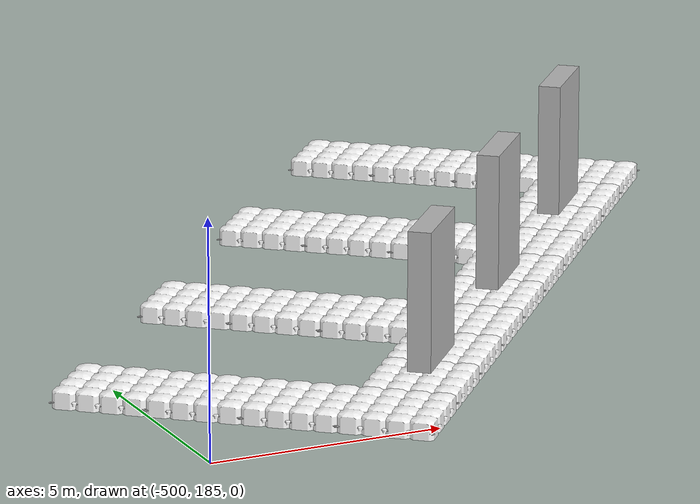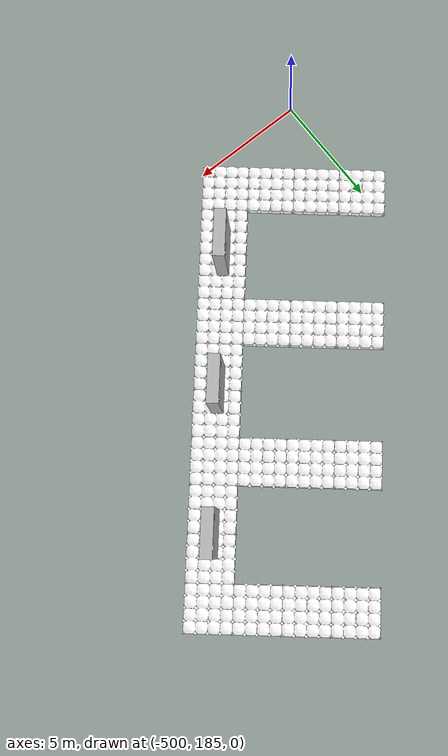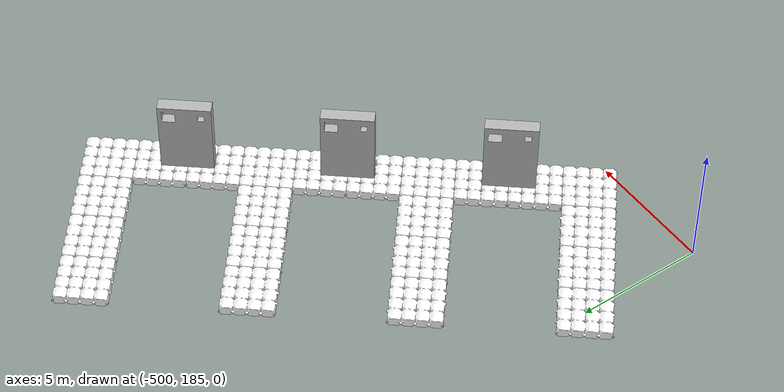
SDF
<sdf version="1.9">
 <world name="scan_dock_deliver4">
  <physics name="4ms" type="dart">
   <max_step_size>0.004</max_step_size>
   <real_time_factor>1.0</real_time_factor>
  </physics>
  <plugin filename="gz-sim-physics-system" name="gz::sim::systems::Physics"/>
  <plugin filename="gz-sim-user-commands-system" name="gz::sim::systems::UserCommands"/>
  <plugin filename="gz-sim-sensors-system" name="gz::sim::systems::Sensors">
   <render_engine>ogre2</render_engine>
   <disable_on_drained_battery>true</disable_on_drained_battery>
  </plugin>
  <plugin filename="gz-sim-imu-system" name="gz::sim::systems::Imu"/>
  <plugin filename="gz-sim-magnetometer-system" name="gz::sim::systems::Magnetometer"/>
  <plugin filename="gz-sim-forcetorque-system" name="gz::sim::systems::ForceTorque"/>
  <plugin filename="gz-sim-particle-emitter2-system" name="gz::sim::systems::ParticleEmitter2"/>
  <plugin filename="gz-sim-scene-broadcaster-system" name="gz::sim::systems::SceneBroadcaster"/>
  <plugin filename="gz-sim-contact-system" name="gz::sim::systems::Contact"/>
  <plugin filename="gz-sim-navsat-system" name="gz::sim::systems::NavSat"/>
  <scene><grid>false</grid><ambient>0.8 0.8 0.8</ambient><background>0.8 0.8 0.8</background></scene>
  <spherical_coordinates>
   <surface_model>EARTH_WGS84</surface_model>
   <world_frame_orientation>ENU</world_frame_orientation>
   <latitude_deg>-33.724223</latitude_deg>
   <longitude_deg>150.679736</longitude_deg>
   <elevation>0.0</elevation>
   <heading_deg>0.0</heading_deg>
  </spherical_coordinates>
  <light type="directional" name="sun">
   <pose>0 0 10 0 0 0</pose>
   <diffuse>0.8 0.8 0.8 1</diffuse>
   <specular>0.2 0.2 0.2 1</specular>
   <attenuation>
    <range>1000</range>
    <constant>0.9</constant>
    <linear>0.01</linear>
    <quadratic>0.001</quadratic>
   </attenuation>
   <direction>-0.5 0.1 -0.9</direction>
  </light>
  <include><name>platform</name><uri>platform</uri></include>
  <plugin name="gz::sim" filename="dummy">
   <performer name="perf_blue_projectile">
    <ref>blue_projectile</ref>
    <geometry><box><size>0.057 0.057 0.057</size></box></geometry>
   </performer>
  </plugin>
  <plugin filename="libUSVWind.so" name="vrx::USVWind">
   <wind_obj>
    <name>wamv</name>
    <link_name>wamv/base_link</link_name>
    <coeff_vector>.5 .5 .33</coeff_vector>
   </wind_obj>
   <wind_direction>96</wind_direction>
   <wind_mean_velocity>3.0</wind_mean_velocity>
   <var_wind_gain_constants>2.0</var_wind_gain_constants>
   <var_wind_time_constants>2</var_wind_time_constants>
   <random_seed>11</random_seed>
   <update_rate>10</update_rate>
   <topic_wind_speed>/vrx/debug/wind/speed</topic_wind_speed>
   <topic_wind_direction>/vrx/debug/wind/direction</topic_wind_direction>
  </plugin>
  <plugin filename="libPublisherPlugin.so" name="vrx::PublisherPlugin">
   <message type="gz.msgs.Param" topic="/vrx/wavefield/parameters" every="2.0">params {
          key: "direction"
          value {
            type: DOUBLE
            double_value: 0.7853982
          }
        }
        params {
          key: "gain"
          value {
            type: DOUBLE
            double_value: 0.6
          }
        }
        params {
          key: "period"
          value {
            type: DOUBLE
            double_value: 6
          }
        }
        params {
          key: "steepness"
          value {
            type: DOUBLE
            double_value: 0
          }
        }</message>
  </plugin>
  <include><uri>dock_2022</uri><pose>-500 190 0 0 0 -0.7</pose></include>
  <plugin filename="libScanDockScoringPlugin.so" name="vrx::ScanDockScoringPlugin">
   <vehicle>wamv</vehicle>
   <task_name>scan_dock_deliver</task_name>
   <task_info_topic>/vrx/task/info</task_info_topic>
   <initial_state_duration>10</initial_state_duration>
   <ready_state_duration>10</ready_state_duration>
   <running_state_duration>300</running_state_duration>
   <release_topic>/vrx/release</release_topic>
   <color_sequence_topic>/vrx/scan_dock_deliver/color_sequence</color_sequence_topic>
   <color_1>blue</color_1>
   <color_2>green</color_2>
   <color_3>yellow</color_3>
   <dock_bonus_points>15</dock_bonus_points>
   <correct_dock_bonus_points>5</correct_dock_bonus_points>
   <bays>
    <bay>
     <name>bay1</name>
     <internal_activation_topic>/vrx/dock_2022/bay_1/contain</internal_activation_topic>
     <external_activation_topic>/vrx/dock_2022/bay_1_external/contain</external_activation_topic>
     <symbol_topic>/vrx/dock_2022_placard1/symbol</symbol_topic>
     <min_dock_time>10.0</min_dock_time>
     <correct_dock>False</correct_dock>
     <symbol>yellow_cross</symbol>
    </bay>
    <bay>
     <name>bay2</name>
     <internal_activation_topic>/vrx/dock_2022/bay_2/contain</internal_activation_topic>
     <external_activation_topic>/vrx/dock_2022/bay_2_external/contain</external_activation_topic>
     <symbol_topic>/vrx/dock_2022_placard2/symbol</symbol_topic>
     <min_dock_time>10.0</min_dock_time>
     <correct_dock>False</correct_dock>
     <symbol>green_triangle</symbol>
    </bay>
    <bay>
     <name>bay3</name>
     <internal_activation_topic>/vrx/dock_2022/bay_3/contain</internal_activation_topic>
     <external_activation_topic>/vrx/dock_2022/bay_3_external/contain</external_activation_topic>
     <symbol_topic>/vrx/dock_2022_placard3/symbol</symbol_topic>
     <min_dock_time>10.0</min_dock_time>
     <correct_dock>True</correct_dock>
     <symbol>blue_rectangle</symbol>
    </bay>
   </bays>
   <targets>
    <target><topic>/vrx/dock_2022_placard1_big_hole/contain</topic><bonus_points>5</bonus_points></target>
    <target><topic>/vrx/dock_2022_placard1_small_hole/contain</topic><bonus_points>10</bonus_points></target>
    <target><topic>/vrx/dock_2022_placard2_big_hole/contain</topic><bonus_points>5</bonus_points></target>
    <target><topic>/vrx/dock_2022_placard2_small_hole/contain</topic><bonus_points>10</bonus_points></target>
    <target><topic>/vrx/dock_2022_placard3_big_hole/contain</topic><bonus_points>5</bonus_points></target>
    <target><topic>/vrx/dock_2022_placard3_small_hole/contain</topic><bonus_points>10</bonus_points></target>
   </targets>
  </plugin>
 </world>
</sdf>

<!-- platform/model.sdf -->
<sdf version="1.6">
  <model name="platform">
    <static>false</static>
    <link name="dummy_upper"/>

    <joint name="world_joint" type="fixed">
      <parent>world</parent>
      <child>dummy_upper</child>
    </joint>
  </model>
</sdf>

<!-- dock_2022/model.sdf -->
<sdf version="1.6">

  <model name="robotx_dock_2022">
    <static>true</static>

    <!-- The 2022 dock base -->
    <include>
      <uri>dock_2022_base</uri>
    </include>

    <!-- Placard #1 -->
    <model name="dock_2022_placard1">
      <pose>5.75 3 1.5 0 0 1.5707963267948966</pose>
      <include>
        <static>true</static>
        <pose>0 -0.2 0.25 0 0 3.14159</pose>
        <uri>placard_2022</uri>
      </include>
      <link name="link_symbols">
        <static>true</static>
        <pose>0 0.07 0 0 0 0 </pose>
        <visual name="visual_circle">
          <pose>0 0 0 1.571 0 0</pose>
          <geometry>
            <cylinder>
              <radius>0.5</radius>
              <length>0.001</length>
            </cylinder>
          </geometry>
          <transparency>1</transparency>
          <plugin name="vrx::PlacardPlugin" filename="libPlacardPlugin.so">
            <visuals>
              <visual>robotx_dock_2022::dock_2022_placard1::link_symbols::visual_circle</visual>
              <visual>robotx_dock_2022::dock_2022_placard1::link_symbols::visual_h_cross</visual>
              <visual>robotx_dock_2022::dock_2022_placard1::link_symbols::visual_v_cross</visual>
	            <visual>robotx_dock_2022::dock_2022_placard1::link_symbols::visual_triangle</visual>
              <visual>robotx_dock_2022::dock_2022_placard1::link_symbols::visual_rectangle</visual>
            </visuals>
            <shuffle>true</shuffle>
            <robot_namespace>vrx/dock_2022_placard1</robot_namespace>
            <shuffle_topic>shuffle</shuffle_topic>
          </plugin>
        </visual>
        <visual name="visual_h_cross">
          <pose>0 0 0 1.571 0 0</pose>
          <geometry>
            <box>
              <size>0.99 0.33 0.001</size>
            </box>
          </geometry>
          <transparency>1</transparency>
        </visual>
        <visual name="visual_v_cross">
          <pose>0 0 0 1.571 0 0</pose>
          <geometry>
            <box>
              <size>0.33 0.99 0.001</size>
            </box>
          </geometry>
          <transparency>1</transparency>
	      </visual>
        <visual name="visual_triangle">
          <pose> -0.5 0 -0.5 1.571 0 0</pose>
          <geometry>
            <mesh><uri>model://symbol_triangle/mesh/triangle.dae</uri></mesh>
          </geometry>
          <transparency>1</transparency>
	      </visual>
        <visual name="visual_rectangle">
          <pose> 0 0 0 1.571 0 0</pose>
          <geometry>
            <box>
              <size>1 0.75 0.001</size>
            </box>
          </geometry>
          <transparency>1</transparency>
        </visual>

      </link>

      <joint name="placard_to_visual" type="fixed">
        <pose> 0 0 0 0 0 0 </pose>
        <parent>placard::link</parent>
        <child>link_symbols</child>
      </joint>

    </model>

    <!-- Placard #2 -->
    <model name="dock_2022_placard2">
      <pose>5.75 9 1.5 0 0 1.5707963267948966</pose>
      <include>
        <static>true</static>
        <pose>0 -0.2 0.25 0 0 3.14159</pose>
        <uri>placard_2022</uri>
      </include>
      <link name="link_symbols">
        <static>true</static>
        <pose>0 0.07 0 0 0 0 </pose>
        <visual name="visual_circle">
          <pose>0 0 0 1.571 0 0</pose>
          <geometry>
            <cylinder>
              <radius>0.5</radius>
              <length>0.001</length>
            </cylinder>
          </geometry>
          <transparency>1</transparency>
          <plugin name="vrx::PlacardPlugin" filename="libPlacardPlugin.so">
            <visuals>
              <visual>robotx_dock_2022::dock_2022_placard2::link_symbols::visual_circle</visual>
              <visual>robotx_dock_2022::dock_2022_placard2::link_symbols::visual_h_cross</visual>
              <visual>robotx_dock_2022::dock_2022_placard2::link_symbols::visual_v_cross</visual>
	            <visual>robotx_dock_2022::dock_2022_placard2::link_symbols::visual_triangle</visual>
              <visual>robotx_dock_2022::dock_2022_placard2::link_symbols::visual_rectangle</visual>
            </visuals>
            <shuffle>true</shuffle>
            <robot_namespace>vrx/dock_2022_placard2</robot_namespace>
            <shuffle_topic>shuffle</shuffle_topic>
          </plugin>
        </visual>
        <visual name="visual_h_cross">
          <pose>0 0 0 1.571 0 0</pose>
          <geometry>
            <box>
              <size>0.99 0.33 0.001</size>
            </box>
          </geometry>
          <transparency>1</transparency>
        </visual>
        <visual name="visual_v_cross">
          <pose>0 0 0 1.571 0 0</pose>
          <geometry>
            <box>
              <size>0.33 0.99 0.001</size>
            </box>
          </geometry>
          <transparency>1</transparency>
	      </visual>
        <visual name="visual_triangle">
          <pose> -0.5 0 -0.5 1.571 0 0</pose>
          <geometry>
            <mesh><uri>model://symbol_triangle/mesh/triangle.dae</uri></mesh>
          </geometry>
          <transparency>1</transparency>
	      </visual>
        <visual name="visual_rectangle">
          <pose> 0 0 0 1.571 0 0</pose>
          <geometry>
            <box>
              <size>1 0.75 0.001</size>
            </box>
          </geometry>
          <transparency>1</transparency>
        </visual>

      </link>

      <joint name="placard_to_visual" type="fixed">
        <pose> 0 0 0 0 0 0 </pose>
        <parent>placard::link</parent>
        <child>link_symbols</child>
      </joint>

    </model>

    <!-- Placard #3 -->
    <model name="dock_2022_placard3">
      <pose>5.75 15 1.5 0 0 1.5707963267948966</pose>
      <include>
        <static>true</static>
        <pose>0 -0.2 0.25 0 0 3.14159</pose>
        <uri>placard_2022</uri>
      </include>
      <link name="link_symbols">
        <static>true</static>
        <pose>0 0.07 0 0 0 0 </pose>
        <visual name="visual_circle">
          <pose>0 0 0 1.571 0 0</pose>
          <geometry>
            <cylinder>
              <radius>0.5</radius>
              <length>0.001</length>
            </cylinder>
          </geometry>
          <transparency>1</transparency>
          <plugin name="vrx::PlacardPlugin" filename="libPlacardPlugin.so">
            <visuals>
              <visual>robotx_dock_2022::dock_2022_placard3::link_symbols::visual_circle</visual>
              <visual>robotx_dock_2022::dock_2022_placard3::link_symbols::visual_h_cross</visual>
              <visual>robotx_dock_2022::dock_2022_placard3::link_symbols::visual_v_cross</visual>
	            <visual>robotx_dock_2022::dock_2022_placard3::link_symbols::visual_triangle</visual>
              <visual>robotx_dock_2022::dock_2022_placard3::link_symbols::visual_rectangle</visual>
            </visuals>
            <shuffle>true</shuffle>
            <robot_namespace>vrx/dock_2022_placard3</robot_namespace>
            <shuffle_topic>shuffle</shuffle_topic>
          </plugin>
        </visual>
        <visual name="visual_h_cross">
          <pose>0 0 0 1.571 0 0</pose>
          <geometry>
            <box>
              <size>0.99 0.33 0.001</size>
            </box>
          </geometry>
          <transparency>1</transparency>
        </visual>
        <visual name="visual_v_cross">
          <pose>0 0 0 1.571 0 0</pose>
          <geometry>
            <box>
              <size>0.33 0.99 0.001</size>
            </box>
          </geometry>
          <transparency>1</transparency>
	      </visual>
        <visual name="visual_triangle">
          <pose> -0.5 0 -0.5 1.571 0 0</pose>
          <geometry>
            <mesh><uri>model://symbol_triangle/mesh/triangle.dae</uri></mesh>
          </geometry>
          <transparency>1</transparency>
	      </visual>
        <visual name="visual_rectangle">
          <pose> 0 0 0 1.571 0 0</pose>
          <geometry>
            <box>
              <size>1 0.75 0.001</size>
            </box>
          </geometry>
          <transparency>1</transparency>
        </visual>

      </link>

      <joint name="placard_to_visual" type="fixed">
        <pose> 0 0 0 0 0 0 </pose>
        <parent>placard::link</parent>
        <child>link_symbols</child>
      </joint>

    </model>

    <!-- Uncomment to see the activation areas of the PerformerDectorPlugins
         Make sure that the size and location are consistent with plugin -->

      <!-- Uncomment to see the activation areas of the projectile targets -->

    <!-- Plugins to detect if vehicle is in the different dock regions -->
    <plugin
      filename="gz-sim-performer-detector-system"
      name="gz::sim::systems::PerformerDetector">
      <topic>/vrx/dock_2022/bay_1/contain</topic>
      <pose>1.5 3 0.25 0 0 1.5707963267948966</pose>
      <geometry>
        <box>
          <size>1.5 4 2</size>
        </box>
      </geometry>
    </plugin>

    <plugin
      filename="gz-sim-performer-detector-system"
      name="gz::sim::systems::PerformerDetector">
      <topic>/vrx/dock_2022/bay_2/contain</topic>
      <pose>1.5 9 0.25 0 0 1.5707963267948966</pose>
      <geometry>
        <box>
          <size>1.5 4 2</size>
        </box>
      </geometry>
    </plugin>

    <plugin
      filename="gz-sim-performer-detector-system"
      name="gz::sim::systems::PerformerDetector">
      <topic>/vrx/dock_2022/bay_3/contain</topic>
      <pose>1.5 15 0.25 0 0 1.5707963267948966</pose>
      <geometry>
        <box>
          <size>1.5 4 2</size>
        </box>
      </geometry>
    </plugin>

    <plugin
      filename="gz-sim-performer-detector-system"
      name="gz::sim::systems::PerformerDetector">
      <topic>/vrx/dock_2022/bay_1_external/contain</topic>
      <pose>-3.5 3 0.25 0 0 1.5707963267948966</pose>
      <geometry>
        <box>
          <size>5.5 1.5 2</size>
        </box>
      </geometry>
    </plugin>

    <plugin
      filename="gz-sim-performer-detector-system"
      name="gz::sim::systems::PerformerDetector">
      <topic>/vrx/dock_2022/bay_2_external/contain</topic>
      <pose>-3.5 9 0.25 0 0 1.5707963267948966</pose>
      <geometry>
        <box>
          <size>5.5 1.5 2</size>
        </box>
      </geometry>
    </plugin>

    <plugin
      filename="gz-sim-performer-detector-system"
      name="gz::sim::systems::PerformerDetector">
      <topic>/vrx/dock_2022/bay_3_external/contain</topic>
      <pose>-3.5 15 0.25 0 0 1.5707963267948966</pose>
      <geometry>
        <box>
          <size>5.5 1.5 2</size>
        </box>
      </geometry>
    </plugin>

    <!-- Plugins to detect if the projectile entered the hole -->
    <plugin
      filename="gz-sim-performer-detector-system"
      name="gz::sim::systems::PerformerDetector">
      <topic>/vrx/dock_2022_placard1_big_hole/contain</topic>
      <pose>5.95 3.59 2.83 0 0 1.5707963267948966</pose>
      <geometry>
        <box>
          <size>0.5 0.5 0.5</size>
        </box>
      </geometry>
    </plugin>

    <plugin
      filename="gz-sim-performer-detector-system"
      name="gz::sim::systems::PerformerDetector">
      <topic>vrx/dock_2022_placard1_small_hole/contain</topic>
      <pose>5.95 2.39 2.83 0 0 1.5707963267948966</pose>
      <geometry>
        <box>
          <size>0.25 0.5 0.25</size>
        </box>
      </geometry>
    </plugin>

    <plugin
      filename="gz-sim-performer-detector-system"
      name="gz::sim::systems::PerformerDetector">
      <topic>/vrx/dock_2022_placard2_big_hole/contain</topic>
      <pose>5.95 9.59 2.83 0 0 1.5707963267948966</pose>
      <geometry>
        <box>
          <size>0.5 0.5 0.5</size>
        </box>
      </geometry>
    </plugin>

    <plugin
      filename="gz-sim-performer-detector-system"
      name="gz::sim::systems::PerformerDetector">
      <topic>vrx/dock_2022_placard2_small_hole/contain</topic>
      <pose>5.95 8.39 2.83 0 0 1.5707963267948966</pose>
      <geometry>
        <box>
          <size>0.25 0.5 0.25</size>
        </box>
      </geometry>
    </plugin>

    <plugin
      filename="gz-sim-performer-detector-system"
      name="gz::sim::systems::PerformerDetector">
      <topic>/vrx/dock_2022_placard3_big_hole/contain</topic>
      <pose>5.95 15.59 2.83 0 0 1.5707963267948966</pose>
      <geometry>
        <box>
          <size>0.5 0.5 0.5</size>
        </box>
      </geometry>
    </plugin>

    <plugin
      filename="gz-sim-performer-detector-system"
      name="gz::sim::systems::PerformerDetector">
      <topic>vrx/dock_2022_placard3_small_hole/contain</topic>
      <pose>5.95 14.39 2.83 0 0 1.5707963267948966</pose>
      <geometry>
        <box>
          <size>0.25 0.5 0.25</size>
        </box>
      </geometry>
    </plugin>

  </model>
</sdf>

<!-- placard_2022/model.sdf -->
<sdf version="1.6">
  <model name="placard">
    <pose>0 0 1 0 0 0</pose>
    <!-- The white placard -->
    <link name="link">
      <collision name="collision_1">
        <pose>-0.9234 0.0 1.164 0.0 0.0 0.0</pose>
        <geometry>
          <box>
            <size>0.153199 0.500 0.672</size>
          </box>
        </geometry>
      </collision>
      <collision name="collision_2">
        <pose>-0.596803 0.0 1.41357 -3.14159 -1.5708 0.0</pose>
        <geometry>
          <box>
            <size>0.17285 0.5 0.5</size>
          </box>
        </geometry>
      </collision>
      <collision name="collision_3">
        <pose>0.326598 0.0 1.35111 0.0 0.0 0.0</pose>
        <geometry>
          <box>
            <size>1.3468 0.500 0.29777</size>
          </box>
        </geometry>
      </collision>
      <collision name="collision_4">
        <pose>0.070527 0.0 1.07723 0.0 0.0 0.0</pose>
        <geometry>
          <box>
            <size>0.834664 0.500 0.25</size>
          </box>
        </geometry>
      </collision>
      <collision name="collision_6">
        <pose>0.326598 0.0 0.890117 0.0 0.0 0.0</pose>
        <geometry>
          <box>
            <size>1.3468 0.500 0.124233</size>
          </box>
        </geometry>
      </collision>
      <collision name="collision_5">
        <pose>0.868936 0.0 1.07723 1.5708 0.0 1.5708</pose>
        <geometry>
          <box>
            <size>0.500 0.25 0.262128</size>
          </box>
        </geometry>
      </collision>
      <collision name="collision_7">
        <pose>0.0 0.0 -0.336 0.0 0.0 0.0</pose>
        <geometry>
          <box>
            <size>2.000 0.500 2.328</size>
          </box>
        </geometry>
      </collision>
      <visual name="visual">
        <geometry>
          <mesh>
            <uri>meshes/placard_2022.dae</uri>
          </mesh>
        </geometry>
      </visual>
    </link>
  </model>
</sdf>

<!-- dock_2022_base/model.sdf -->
<sdf version="1.6">

  <!-- Important: This file is generated. DO NOT EDIT! -->

  <model name="robotx_dock_2022_base">
    <selfCollide>false</selfCollide>

    <!--
      This is how this dock should look like:

          X  X  X  X          X  X  X  X          X  X  X  X          XXXXXXXXXX
    -->

      <static>true</static>

    <!-- Row 0 -->
    <include>
      <name>dock_block_0_0</name>
      <pose>0 0 0.25 0 0 0</pose>
        <uri>dock_block_4x4</uri>
    </include>
    <include>
      <name>dock_block_0_3</name>
      <pose>0 6 0.25 0 0 0</pose>
        <uri>dock_block_4x4</uri>
    </include>
    <include>
      <name>dock_block_0_6</name>
      <pose>0 12 0.25 0 0 0</pose>
        <uri>dock_block_4x4</uri>
    </include>
    <include>
      <name>dock_block_0_9</name>
      <pose>0 18 0.25 0 0 0</pose>
        <uri>dock_block_4x4</uri>
    </include>

    <!-- Row 1 -->
    <include>
      <name>dock_block_1_0</name>
      <pose>2 0 0.25 0 0 0</pose>
        <uri>dock_block_4x4</uri>
    </include>
    <include>
      <name>dock_block_1_3</name>
      <pose>2 6 0.25 0 0 0</pose>
        <uri>dock_block_4x4</uri>
    </include>
    <include>
      <name>dock_block_1_6</name>
      <pose>2 12 0.25 0 0 0</pose>
        <uri>dock_block_4x4</uri>
    </include>
    <include>
      <name>dock_block_1_9</name>
      <pose>2 18 0.25 0 0 0</pose>
        <uri>dock_block_4x4</uri>
    </include>

    <!-- Row 2 -->
    <include>
      <name>dock_block_2_0</name>
      <pose>4 0 0.25 0 0 0</pose>
        <uri>dock_block_4x4</uri>
    </include>
    <include>
      <name>dock_block_2_3</name>
      <pose>4 6 0.25 0 0 0</pose>
        <uri>dock_block_4x4</uri>
    </include>
    <include>
      <name>dock_block_2_6</name>
      <pose>4 12 0.25 0 0 0</pose>
        <uri>dock_block_4x4</uri>
    </include>
    <include>
      <name>dock_block_2_9</name>
      <pose>4 18 0.25 0 0 0</pose>
        <uri>dock_block_4x4</uri>
    </include>

    <!-- Row 3 -->
    <include>
      <name>dock_block_3_0</name>
      <pose>6 0 0.25 0 0 0</pose>
        <uri>dock_block_4x4</uri>
    </include>
    <include>
      <name>dock_block_3_1</name>
      <pose>6 2 0.25 0 0 0</pose>
        <uri>dock_block_4x4</uri>
    </include>
    <include>
      <name>dock_block_3_2</name>
      <pose>6 4 0.25 0 0 0</pose>
        <uri>dock_block_4x4</uri>
    </include>
    <include>
      <name>dock_block_3_3</name>
      <pose>6 6 0.25 0 0 0</pose>
        <uri>dock_block_4x4</uri>
    </include>
    <include>
      <name>dock_block_3_4</name>
      <pose>6 8 0.25 0 0 0</pose>
        <uri>dock_block_4x4</uri>
    </include>
    <include>
      <name>dock_block_3_5</name>
      <pose>6 10 0.25 0 0 0</pose>
        <uri>dock_block_4x4</uri>
    </include>
    <include>
      <name>dock_block_3_6</name>
      <pose>6 12 0.25 0 0 0</pose>
        <uri>dock_block_4x4</uri>
    </include>
    <include>
      <name>dock_block_3_7</name>
      <pose>6 14 0.25 0 0 0</pose>
        <uri>dock_block_4x4</uri>
    </include>
    <include>
      <name>dock_block_3_8</name>
      <pose>6 16 0.25 0 0 0</pose>
        <uri>dock_block_4x4</uri>
    </include>
    <include>
      <name>dock_block_3_9</name>
      <pose>6 18 0.25 0 0 0</pose>
        <uri>dock_block_4x4</uri>
    </include>

  </model>
</sdf>

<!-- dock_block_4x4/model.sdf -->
<sdf version="1.5">
  <model name="dock_block_4x4">
    <static>true</static>
    <link name="link">
      <collision name="collision">
        <pose>0 0 0 0 0 0</pose>
        <geometry>
          <box>
            <size>2 2 0.4</size>
          </box>
        </geometry>
      </collision>
      <visual name="visual">
        <pose>-0.25 0.25 0.0 0 0 0 </pose>
        <geometry>
          <mesh>
            <uri>mesh/dock_block_4x4.dae</uri>
          </mesh>
        </geometry>
        <material>
          <diffuse>1.0 1.0 1.0</diffuse>
          <specular>1.0 1.0 1.0</specular>
          <pbr>
            <metal>
              <albedo_map>file://dock_block_4x4/mesh/DockCubes_Albedo.png</albedo_map>
              <normal_map>file://dock_block_4x4/mesh/DockCubes_Normal.png</normal_map>
              <roughness_map>file://dock_block_4x4/mesh/DockCubes_Roughness.png</roughness_map>
              <metalness_map>file://dock_block_4x4/mesh/DockCubes_Metalness.png</metalness_map>
            </metal>
          </pbr>
        </material>
      </visual>
    </link>
  </model>
</sdf>
